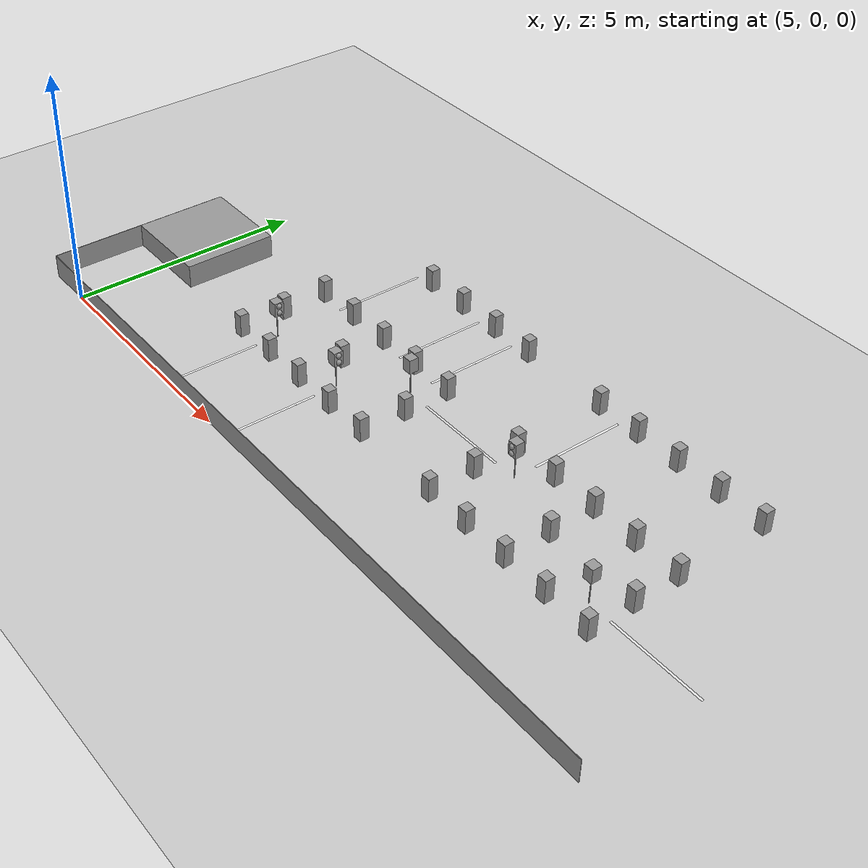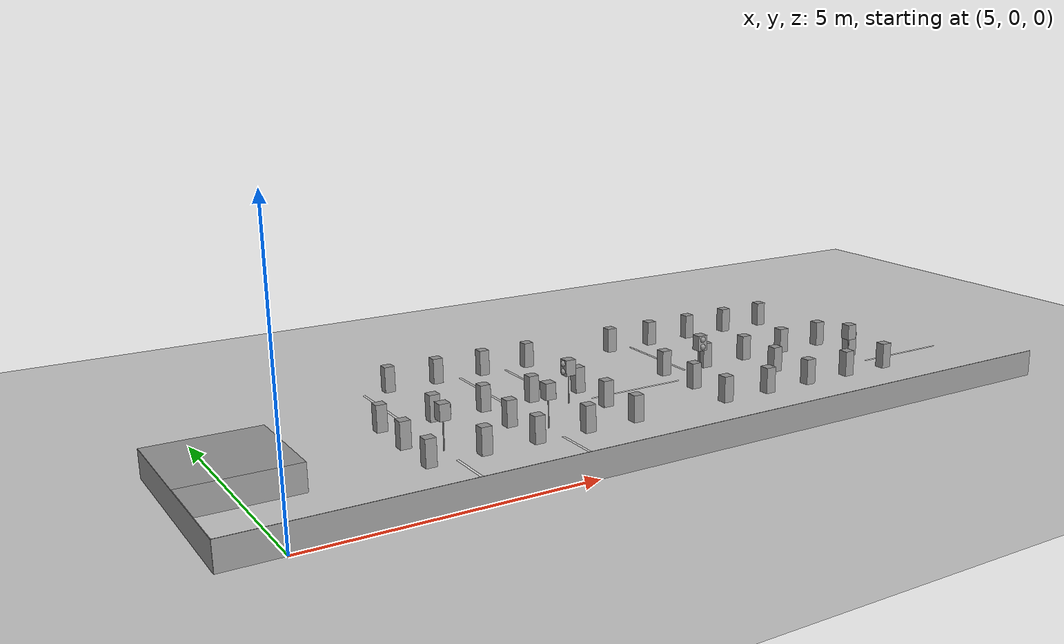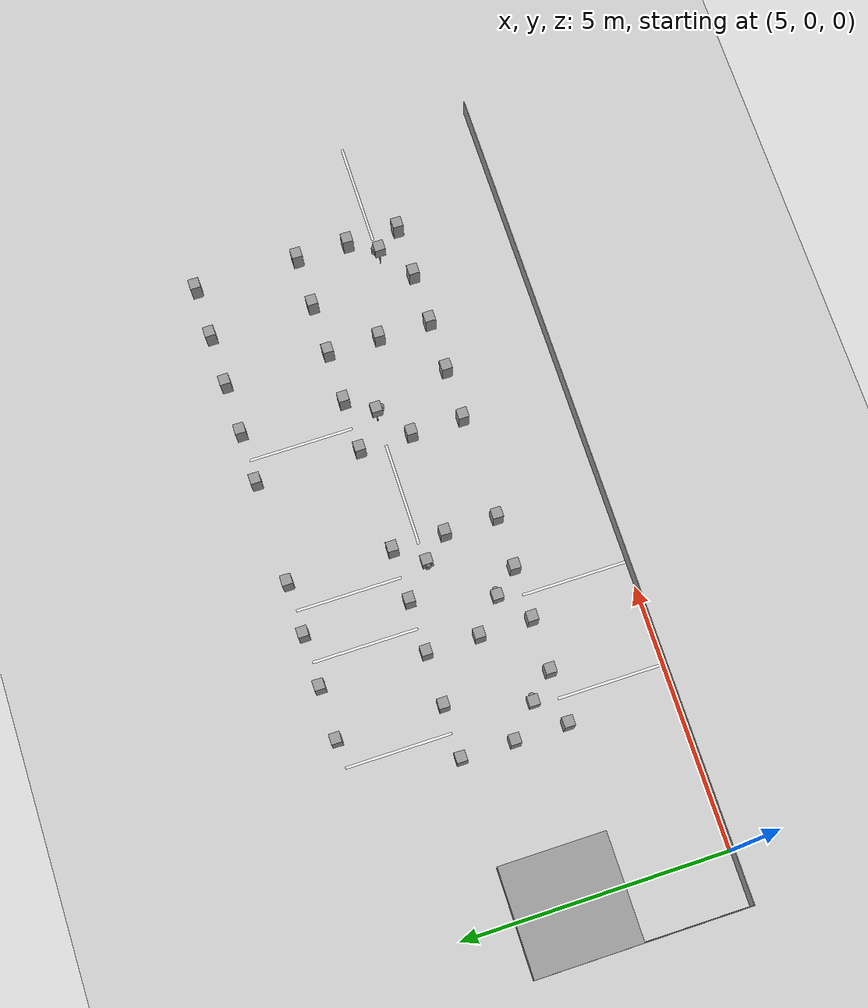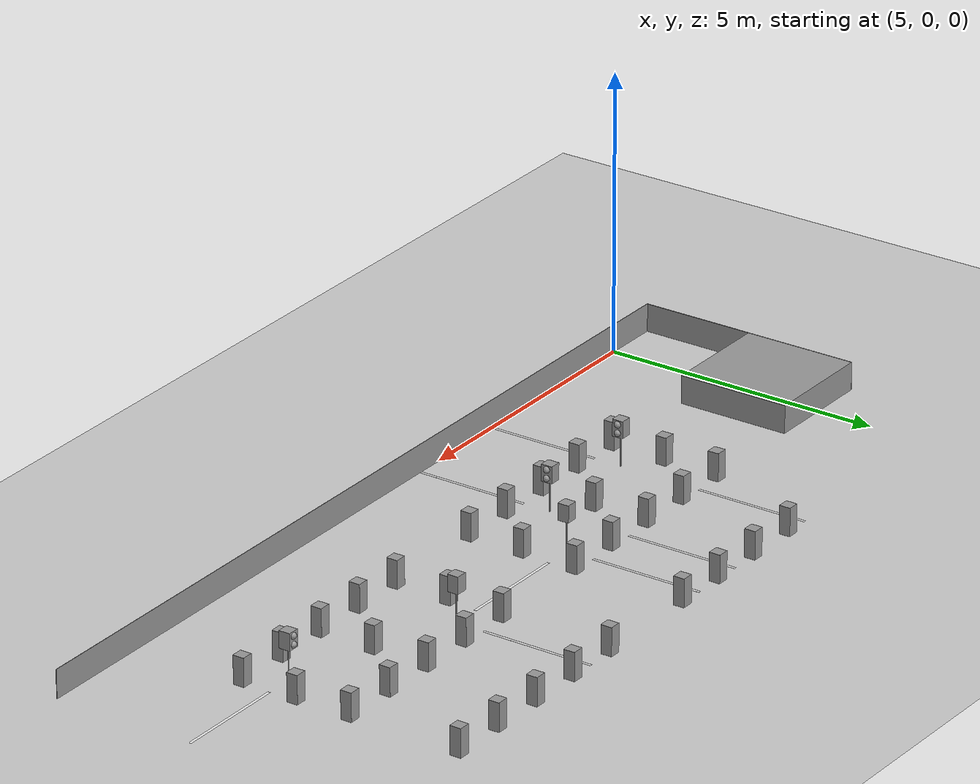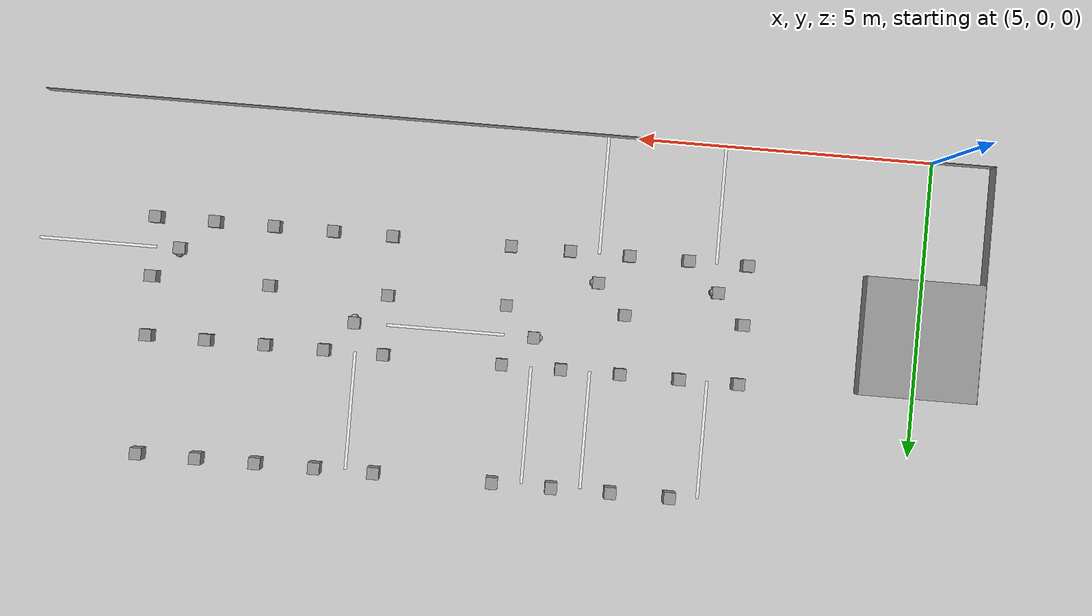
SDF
<sdf version="1.6">
 <world name="default">
  <model name="box_98">
   <pose>5.0 3.0 0.25 0 0 0</pose>
   <link name="link">
    <inertial>
     <mass>1</mass>
     <inertia><ixx>0</ixx><ixy>0</ixy><ixz>0</ixz><iyy>0</iyy><iyz>0</iyz><izz>0</izz></inertia>
    </inertial>
    <collision name="collision"><geometry><box><size>2.0 2.0 0.5</size></box></geometry></collision>
    <visual name="visual">
     <geometry><box><size>2.0 2.0 0.5</size></box></geometry>
     <material>
      <script><name>Gazebo/Grey</name><uri>file://media/materials/scripts/gazebo.material</uri></script>
     </material>
    </visual>
   </link>
   <static>1</static>
  </model>
  <model name="box_96">
   <pose>16.0 2.0 0.25 0 0 0</pose>
   <link name="link">
    <inertial>
     <mass>1</mass>
     <inertia><ixx>0</ixx><ixy>0</ixy><ixz>0</ixz><iyy>0</iyy><iyz>0</iyz><izz>0</izz></inertia>
    </inertial>
    <collision name="collision"><geometry><box><size>0.2 0.2 0.5</size></box></geometry></collision>
    <visual name="visual">
     <geometry><box><size>0.2 0.2 0.5</size></box></geometry>
     <material>
      <script><name>Gazebo/Grey</name><uri>file://media/materials/scripts/gazebo.material</uri></script>
     </material>
    </visual>
   </link>
   <static>1</static>
  </model>
  <model name="box_95">
   <pose>15.0 2.0 0.25 0 0 0</pose>
   <link name="link">
    <inertial>
     <mass>1</mass>
     <inertia><ixx>0</ixx><ixy>0</ixy><ixz>0</ixz><iyy>0</iyy><iyz>0</iyz><izz>0</izz></inertia>
    </inertial>
    <collision name="collision"><geometry><box><size>0.2 0.2 0.5</size></box></geometry></collision>
    <visual name="visual">
     <geometry><box><size>0.2 0.2 0.5</size></box></geometry>
     <material>
      <script><name>Gazebo/Grey</name><uri>file://media/materials/scripts/gazebo.material</uri></script>
     </material>
    </visual>
   </link>
   <static>1</static>
  </model>
  <model name="box_94">
   <pose>14.0 2.0 0.25 0 0 0</pose>
   <link name="link">
    <inertial>
     <mass>1</mass>
     <inertia><ixx>0</ixx><ixy>0</ixy><ixz>0</ixz><iyy>0</iyy><iyz>0</iyz><izz>0</izz></inertia>
    </inertial>
    <collision name="collision"><geometry><box><size>0.2 0.2 0.5</size></box></geometry></collision>
    <visual name="visual">
     <geometry><box><size>0.2 0.2 0.5</size></box></geometry>
     <material>
      <script><name>Gazebo/Grey</name><uri>file://media/materials/scripts/gazebo.material</uri></script>
     </material>
    </visual>
   </link>
   <static>1</static>
  </model>
  <model name="box_93">
   <pose>16.0 3.0 0.25 0 0 0</pose>
   <link name="link">
    <inertial>
     <mass>1</mass>
     <inertia><ixx>0</ixx><ixy>0</ixy><ixz>0</ixz><iyy>0</iyy><iyz>0</iyz><izz>0</izz></inertia>
    </inertial>
    <collision name="collision"><geometry><box><size>0.2 0.2 0.5</size></box></geometry></collision>
    <visual name="visual">
     <geometry><box><size>0.2 0.2 0.5</size></box></geometry>
     <material>
      <script><name>Gazebo/Grey</name><uri>file://media/materials/scripts/gazebo.material</uri></script>
     </material>
    </visual>
   </link>
   <static>1</static>
  </model>
  <model name="box_92">
   <pose>14.0 3.0 0.25 0 0 0</pose>
   <link name="link">
    <inertial>
     <mass>1</mass>
     <inertia><ixx>0</ixx><ixy>0</ixy><ixz>0</ixz><iyy>0</iyy><iyz>0</iyz><izz>0</izz></inertia>
    </inertial>
    <collision name="collision"><geometry><box><size>0.2 0.2 0.5</size></box></geometry></collision>
    <visual name="visual">
     <geometry><box><size>0.2 0.2 0.5</size></box></geometry>
     <material>
      <script><name>Gazebo/Grey</name><uri>file://media/materials/scripts/gazebo.material</uri></script>
     </material>
    </visual>
   </link>
   <static>1</static>
  </model>
  <model name="box_91">
   <pose>16.0 4.0 0.25 0 0 0</pose>
   <link name="link">
    <inertial>
     <mass>1</mass>
     <inertia><ixx>0</ixx><ixy>0</ixy><ixz>0</ixz><iyy>0</iyy><iyz>0</iyz><izz>0</izz></inertia>
    </inertial>
    <collision name="collision"><geometry><box><size>0.2 0.2 0.5</size></box></geometry></collision>
    <visual name="visual">
     <geometry><box><size>0.2 0.2 0.5</size></box></geometry>
     <material>
      <script><name>Gazebo/Grey</name><uri>file://media/materials/scripts/gazebo.material</uri></script>
     </material>
    </visual>
   </link>
   <static>1</static>
  </model>
  <model name="box_90">
   <pose>15.0 4.0 0.25 0 0 0</pose>
   <link name="link">
    <inertial>
     <mass>1</mass>
     <inertia><ixx>0</ixx><ixy>0</ixy><ixz>0</ixz><iyy>0</iyy><iyz>0</iyz><izz>0</izz></inertia>
    </inertial>
    <collision name="collision"><geometry><box><size>0.2 0.2 0.5</size></box></geometry></collision>
    <visual name="visual">
     <geometry><box><size>0.2 0.2 0.5</size></box></geometry>
     <material>
      <script><name>Gazebo/Grey</name><uri>file://media/materials/scripts/gazebo.material</uri></script>
     </material>
    </visual>
   </link>
   <static>1</static>
  </model>
  <model name="box_89">
   <pose>14.0 4.0 0.25 0 0 0</pose>
   <link name="link">
    <inertial>
     <mass>1</mass>
     <inertia><ixx>0</ixx><ixy>0</ixy><ixz>0</ixz><iyy>0</iyy><iyz>0</iyz><izz>0</izz></inertia>
    </inertial>
    <collision name="collision"><geometry><box><size>0.2 0.2 0.5</size></box></geometry></collision>
    <visual name="visual">
     <geometry><box><size>0.2 0.2 0.5</size></box></geometry>
     <material>
      <script><name>Gazebo/Grey</name><uri>file://media/materials/scripts/gazebo.material</uri></script>
     </material>
    </visual>
   </link>
   <static>1</static>
  </model>
  <model name="box_88">
   <pose>12.0 2.0 0.25 0 0 0</pose>
   <link name="link">
    <inertial>
     <mass>1</mass>
     <inertia><ixx>0</ixx><ixy>0</ixy><ixz>0</ixz><iyy>0</iyy><iyz>0</iyz><izz>0</izz></inertia>
    </inertial>
    <collision name="collision"><geometry><box><size>0.2 0.2 0.5</size></box></geometry></collision>
    <visual name="visual">
     <geometry><box><size>0.2 0.2 0.5</size></box></geometry>
     <material>
      <script><name>Gazebo/Grey</name><uri>file://media/materials/scripts/gazebo.material</uri></script>
     </material>
    </visual>
   </link>
   <static>1</static>
  </model>
  <model name="box_87">
   <pose>11.0 2.0 0.25 0 0 0</pose>
   <link name="link">
    <inertial>
     <mass>1</mass>
     <inertia><ixx>0</ixx><ixy>0</ixy><ixz>0</ixz><iyy>0</iyy><iyz>0</iyz><izz>0</izz></inertia>
    </inertial>
    <collision name="collision"><geometry><box><size>0.2 0.2 0.5</size></box></geometry></collision>
    <visual name="visual">
     <geometry><box><size>0.2 0.2 0.5</size></box></geometry>
     <material>
      <script><name>Gazebo/Grey</name><uri>file://media/materials/scripts/gazebo.material</uri></script>
     </material>
    </visual>
   </link>
   <static>1</static>
  </model>
  <model name="box_86">
   <pose>10.0 2.0 0.25 0 0 0</pose>
   <link name="link">
    <inertial>
     <mass>1</mass>
     <inertia><ixx>0</ixx><ixy>0</ixy><ixz>0</ixz><iyy>0</iyy><iyz>0</iyz><izz>0</izz></inertia>
    </inertial>
    <collision name="collision"><geometry><box><size>0.2 0.2 0.5</size></box></geometry></collision>
    <visual name="visual">
     <geometry><box><size>0.2 0.2 0.5</size></box></geometry>
     <material>
      <script><name>Gazebo/Grey</name><uri>file://media/materials/scripts/gazebo.material</uri></script>
     </material>
    </visual>
   </link>
   <static>1</static>
  </model>
  <model name="box_85">
   <pose>12.0 3.0 0.25 0 0 0</pose>
   <link name="link">
    <inertial>
     <mass>1</mass>
     <inertia><ixx>0</ixx><ixy>0</ixy><ixz>0</ixz><iyy>0</iyy><iyz>0</iyz><izz>0</izz></inertia>
    </inertial>
    <collision name="collision"><geometry><box><size>0.2 0.2 0.5</size></box></geometry></collision>
    <visual name="visual">
     <geometry><box><size>0.2 0.2 0.5</size></box></geometry>
     <material>
      <script><name>Gazebo/Grey</name><uri>file://media/materials/scripts/gazebo.material</uri></script>
     </material>
    </visual>
   </link>
   <static>1</static>
  </model>
  <model name="box_84">
   <pose>10.0 3.0 0.25 0 0 0</pose>
   <link name="link">
    <inertial>
     <mass>1</mass>
     <inertia><ixx>0</ixx><ixy>0</ixy><ixz>0</ixz><iyy>0</iyy><iyz>0</iyz><izz>0</izz></inertia>
    </inertial>
    <collision name="collision"><geometry><box><size>0.2 0.2 0.5</size></box></geometry></collision>
    <visual name="visual">
     <geometry><box><size>0.2 0.2 0.5</size></box></geometry>
     <material>
      <script><name>Gazebo/Grey</name><uri>file://media/materials/scripts/gazebo.material</uri></script>
     </material>
    </visual>
   </link>
   <static>1</static>
  </model>
  <model name="box_83">
   <pose>12.0 4.0 0.25 0 0 0</pose>
   <link name="link">
    <inertial>
     <mass>1</mass>
     <inertia><ixx>0</ixx><ixy>0</ixy><ixz>0</ixz><iyy>0</iyy><iyz>0</iyz><izz>0</izz></inertia>
    </inertial>
    <collision name="collision"><geometry><box><size>0.2 0.2 0.5</size></box></geometry></collision>
    <visual name="visual">
     <geometry><box><size>0.2 0.2 0.5</size></box></geometry>
     <material>
      <script><name>Gazebo/Grey</name><uri>file://media/materials/scripts/gazebo.material</uri></script>
     </material>
    </visual>
   </link>
   <static>1</static>
  </model>
  <model name="box_82">
   <pose>11.0 4.0 0.25 0 0 0</pose>
   <link name="link">
    <inertial>
     <mass>1</mass>
     <inertia><ixx>0</ixx><ixy>0</ixy><ixz>0</ixz><iyy>0</iyy><iyz>0</iyz><izz>0</izz></inertia>
    </inertial>
    <collision name="collision"><geometry><box><size>0.2 0.2 0.5</size></box></geometry></collision>
    <visual name="visual">
     <geometry><box><size>0.2 0.2 0.5</size></box></geometry>
     <material>
      <script><name>Gazebo/Grey</name><uri>file://media/materials/scripts/gazebo.material</uri></script>
     </material>
    </visual>
   </link>
   <static>1</static>
  </model>
  <model name="box_81">
   <pose>10.0 4.0 0.25 0 0 0</pose>
   <link name="link">
    <inertial>
     <mass>1</mass>
     <inertia><ixx>0</ixx><ixy>0</ixy><ixz>0</ixz><iyy>0</iyy><iyz>0</iyz><izz>0</izz></inertia>
    </inertial>
    <collision name="collision"><geometry><box><size>0.2 0.2 0.5</size></box></geometry></collision>
    <visual name="visual">
     <geometry><box><size>0.2 0.2 0.5</size></box></geometry>
     <material>
      <script><name>Gazebo/Grey</name><uri>file://media/materials/scripts/gazebo.material</uri></script>
     </material>
    </visual>
   </link>
   <static>1</static>
  </model>
  <model name="box_80">
   <pose>12.0 6.0 0.25 0 0 0</pose>
   <link name="link">
    <inertial>
     <mass>1</mass>
     <inertia><ixx>0</ixx><ixy>0</ixy><ixz>0</ixz><iyy>0</iyy><iyz>0</iyz><izz>0</izz></inertia>
    </inertial>
    <collision name="collision"><geometry><box><size>0.2 0.2 0.5</size></box></geometry></collision>
    <visual name="visual">
     <geometry><box><size>0.2 0.2 0.5</size></box></geometry>
     <material>
      <script><name>Gazebo/Grey</name><uri>file://media/materials/scripts/gazebo.material</uri></script>
     </material>
    </visual>
   </link>
   <static>1</static>
  </model>
  <model name="box_79">
   <pose>11.0 6.0 0.25 0 0 0</pose>
   <link name="link">
    <inertial>
     <mass>1</mass>
     <inertia><ixx>0</ixx><ixy>0</ixy><ixz>0</ixz><iyy>0</iyy><iyz>0</iyz><izz>0</izz></inertia>
    </inertial>
    <collision name="collision"><geometry><box><size>0.2 0.2 0.5</size></box></geometry></collision>
    <visual name="visual">
     <geometry><box><size>0.2 0.2 0.5</size></box></geometry>
     <material>
      <script><name>Gazebo/Grey</name><uri>file://media/materials/scripts/gazebo.material</uri></script>
     </material>
    </visual>
   </link>
   <static>1</static>
  </model>
  <model name="box_78">
   <pose>10.0 6.0 0.25 0 0 0</pose>
   <link name="link">
    <inertial>
     <mass>1</mass>
     <inertia><ixx>0</ixx><ixy>0</ixy><ixz>0</ixz><iyy>0</iyy><iyz>0</iyz><izz>0</izz></inertia>
    </inertial>
    <collision name="collision"><geometry><box><size>0.2 0.2 0.5</size></box></geometry></collision>
    <visual name="visual">
     <geometry><box><size>0.2 0.2 0.5</size></box></geometry>
     <material>
      <script><name>Gazebo/Grey</name><uri>file://media/materials/scripts/gazebo.material</uri></script>
     </material>
    </visual>
   </link>
   <static>1</static>
  </model>
  <model name="box_72">
   <pose>16.0 6.0 0.25 0 0 0</pose>
   <link name="link">
    <inertial>
     <mass>1</mass>
     <inertia><ixx>0</ixx><ixy>0</ixy><ixz>0</ixz><iyy>0</iyy><iyz>0</iyz><izz>0</izz></inertia>
    </inertial>
    <collision name="collision"><geometry><box><size>0.2 0.2 0.5</size></box></geometry></collision>
    <visual name="visual">
     <geometry><box><size>0.2 0.2 0.5</size></box></geometry>
     <material>
      <script><name>Gazebo/Grey</name><uri>file://media/materials/scripts/gazebo.material</uri></script>
     </material>
    </visual>
   </link>
   <static>1</static>
  </model>
  <model name="box_71">
   <pose>15.0 6.0 0.25 0 0 0</pose>
   <link name="link">
    <inertial>
     <mass>1</mass>
     <inertia><ixx>0</ixx><ixy>0</ixy><ixz>0</ixz><iyy>0</iyy><iyz>0</iyz><izz>0</izz></inertia>
    </inertial>
    <collision name="collision"><geometry><box><size>0.2 0.2 0.5</size></box></geometry></collision>
    <visual name="visual">
     <geometry><box><size>0.2 0.2 0.5</size></box></geometry>
     <material>
      <script><name>Gazebo/Grey</name><uri>file://media/materials/scripts/gazebo.material</uri></script>
     </material>
    </visual>
   </link>
   <static>1</static>
  </model>
  <model name="box_70">
   <pose>14.0 6.0 0.25 0 0 0</pose>
   <link name="link">
    <inertial>
     <mass>1</mass>
     <inertia><ixx>0</ixx><ixy>0</ixy><ixz>0</ixz><iyy>0</iyy><iyz>0</iyz><izz>0</izz></inertia>
    </inertial>
    <collision name="collision"><geometry><box><size>0.2 0.2 0.5</size></box></geometry></collision>
    <visual name="visual">
     <geometry><box><size>0.2 0.2 0.5</size></box></geometry>
     <material>
      <script><name>Gazebo/Grey</name><uri>file://media/materials/scripts/gazebo.material</uri></script>
     </material>
    </visual>
   </link>
   <static>1</static>
  </model>
  <model name="box_64">
   <pose>10.0 2.0 0.25 0 0 0</pose>
   <link name="link">
    <inertial>
     <mass>1</mass>
     <inertia><ixx>0</ixx><ixy>0</ixy><ixz>0</ixz><iyy>0</iyy><iyz>0</iyz><izz>0</izz></inertia>
    </inertial>
    <collision name="collision"><geometry><box><size>0.2 0.2 0.5</size></box></geometry></collision>
    <visual name="visual">
     <geometry><box><size>0.2 0.2 0.5</size></box></geometry>
     <material>
      <script><name>Gazebo/Grey</name><uri>file://media/materials/scripts/gazebo.material</uri></script>
     </material>
    </visual>
   </link>
   <static>1</static>
  </model>
  <model name="box_63">
   <pose>9.0 2.0 0.25 0 0 0</pose>
   <link name="link">
    <inertial>
     <mass>1</mass>
     <inertia><ixx>0</ixx><ixy>0</ixy><ixz>0</ixz><iyy>0</iyy><iyz>0</iyz><izz>0</izz></inertia>
    </inertial>
    <collision name="collision"><geometry><box><size>0.2 0.2 0.5</size></box></geometry></collision>
    <visual name="visual">
     <geometry><box><size>0.2 0.2 0.5</size></box></geometry>
     <material>
      <script><name>Gazebo/Grey</name><uri>file://media/materials/scripts/gazebo.material</uri></script>
     </material>
    </visual>
   </link>
   <static>1</static>
  </model>
  <model name="box_62">
   <pose>8.0 2.0 0.25 0 0 0</pose>
   <link name="link">
    <inertial>
     <mass>1</mass>
     <inertia><ixx>0</ixx><ixy>0</ixy><ixz>0</ixz><iyy>0</iyy><iyz>0</iyz><izz>0</izz></inertia>
    </inertial>
    <collision name="collision"><geometry><box><size>0.2 0.2 0.5</size></box></geometry></collision>
    <visual name="visual">
     <geometry><box><size>0.2 0.2 0.5</size></box></geometry>
     <material>
      <script><name>Gazebo/Grey</name><uri>file://media/materials/scripts/gazebo.material</uri></script>
     </material>
    </visual>
   </link>
   <static>1</static>
  </model>
  <model name="box_61">
   <pose>10.0 3.0 0.25 0 0 0</pose>
   <link name="link">
    <inertial>
     <mass>1</mass>
     <inertia><ixx>0</ixx><ixy>0</ixy><ixz>0</ixz><iyy>0</iyy><iyz>0</iyz><izz>0</izz></inertia>
    </inertial>
    <collision name="collision"><geometry><box><size>0.2 0.2 0.5</size></box></geometry></collision>
    <visual name="visual">
     <geometry><box><size>0.2 0.2 0.5</size></box></geometry>
     <material>
      <script><name>Gazebo/Grey</name><uri>file://media/materials/scripts/gazebo.material</uri></script>
     </material>
    </visual>
   </link>
   <static>1</static>
  </model>
  <model name="box_60">
   <pose>8.0 3.0 0.25 0 0 0</pose>
   <link name="link">
    <inertial>
     <mass>1</mass>
     <inertia><ixx>0</ixx><ixy>0</ixy><ixz>0</ixz><iyy>0</iyy><iyz>0</iyz><izz>0</izz></inertia>
    </inertial>
    <collision name="collision"><geometry><box><size>0.2 0.2 0.5</size></box></geometry></collision>
    <visual name="visual">
     <geometry><box><size>0.2 0.2 0.5</size></box></geometry>
     <material>
      <script><name>Gazebo/Grey</name><uri>file://media/materials/scripts/gazebo.material</uri></script>
     </material>
    </visual>
   </link>
   <static>1</static>
  </model>
  <model name="box_59">
   <pose>10.0 4.0 0.25 0 0 0</pose>
   <link name="link">
    <inertial>
     <mass>1</mass>
     <inertia><ixx>0</ixx><ixy>0</ixy><ixz>0</ixz><iyy>0</iyy><iyz>0</iyz><izz>0</izz></inertia>
    </inertial>
    <collision name="collision"><geometry><box><size>0.2 0.2 0.5</size></box></geometry></collision>
    <visual name="visual">
     <geometry><box><size>0.2 0.2 0.5</size></box></geometry>
     <material>
      <script><name>Gazebo/Grey</name><uri>file://media/materials/scripts/gazebo.material</uri></script>
     </material>
    </visual>
   </link>
   <static>1</static>
  </model>
  <model name="box_58">
   <pose>9.0 4.0 0.25 0 0 0</pose>
   <link name="link">
    <inertial>
     <mass>1</mass>
     <inertia><ixx>0</ixx><ixy>0</ixy><ixz>0</ixz><iyy>0</iyy><iyz>0</iyz><izz>0</izz></inertia>
    </inertial>
    <collision name="collision"><geometry><box><size>0.2 0.2 0.5</size></box></geometry></collision>
    <visual name="visual">
     <geometry><box><size>0.2 0.2 0.5</size></box></geometry>
     <material>
      <script><name>Gazebo/Grey</name><uri>file://media/materials/scripts/gazebo.material</uri></script>
     </material>
    </visual>
   </link>
   <static>1</static>
  </model>
  <model name="box_57">
   <pose>8.0 4.0 0.25 0 0 0</pose>
   <link name="link">
    <inertial>
     <mass>1</mass>
     <inertia><ixx>0</ixx><ixy>0</ixy><ixz>0</ixz><iyy>0</iyy><iyz>0</iyz><izz>0</izz></inertia>
    </inertial>
    <collision name="collision"><geometry><box><size>0.2 0.2 0.5</size></box></geometry></collision>
    <visual name="visual">
     <geometry><box><size>0.2 0.2 0.5</size></box></geometry>
     <material>
      <script><name>Gazebo/Grey</name><uri>file://media/materials/scripts/gazebo.material</uri></script>
     </material>
    </visual>
   </link>
   <static>1</static>
  </model>
  <model name="box_56">
   <pose>18.0 2.0 0.25 0 0 0</pose>
   <link name="link">
    <inertial>
     <mass>1</mass>
     <inertia><ixx>0</ixx><ixy>0</ixy><ixz>0</ixz><iyy>0</iyy><iyz>0</iyz><izz>0</izz></inertia>
    </inertial>
    <collision name="collision"><geometry><box><size>0.2 0.2 0.5</size></box></geometry></collision>
    <visual name="visual">
     <geometry><box><size>0.2 0.2 0.5</size></box></geometry>
     <material>
      <script><name>Gazebo/Grey</name><uri>file://media/materials/scripts/gazebo.material</uri></script>
     </material>
    </visual>
   </link>
   <static>1</static>
  </model>
  <model name="box_55">
   <pose>17.0 2.0 0.25 0 0 0</pose>
   <link name="link">
    <inertial>
     <mass>1</mass>
     <inertia><ixx>0</ixx><ixy>0</ixy><ixz>0</ixz><iyy>0</iyy><iyz>0</iyz><izz>0</izz></inertia>
    </inertial>
    <collision name="collision"><geometry><box><size>0.2 0.2 0.5</size></box></geometry></collision>
    <visual name="visual">
     <geometry><box><size>0.2 0.2 0.5</size></box></geometry>
     <material>
      <script><name>Gazebo/Grey</name><uri>file://media/materials/scripts/gazebo.material</uri></script>
     </material>
    </visual>
   </link>
   <static>1</static>
  </model>
  <model name="box_54">
   <pose>16.0 2.0 0.25 0 0 0</pose>
   <link name="link">
    <inertial>
     <mass>1</mass>
     <inertia><ixx>0</ixx><ixy>0</ixy><ixz>0</ixz><iyy>0</iyy><iyz>0</iyz><izz>0</izz></inertia>
    </inertial>
    <collision name="collision"><geometry><box><size>0.2 0.2 0.5</size></box></geometry></collision>
    <visual name="visual">
     <geometry><box><size>0.2 0.2 0.5</size></box></geometry>
     <material>
      <script><name>Gazebo/Grey</name><uri>file://media/materials/scripts/gazebo.material</uri></script>
     </material>
    </visual>
   </link>
   <static>1</static>
  </model>
  <model name="box_53">
   <pose>18.0 3.0 0.25 0 0 0</pose>
   <link name="link">
    <inertial>
     <mass>1</mass>
     <inertia><ixx>0</ixx><ixy>0</ixy><ixz>0</ixz><iyy>0</iyy><iyz>0</iyz><izz>0</izz></inertia>
    </inertial>
    <collision name="collision"><geometry><box><size>0.2 0.2 0.5</size></box></geometry></collision>
    <visual name="visual">
     <geometry><box><size>0.2 0.2 0.5</size></box></geometry>
     <material>
      <script><name>Gazebo/Grey</name><uri>file://media/materials/scripts/gazebo.material</uri></script>
     </material>
    </visual>
   </link>
   <static>1</static>
  </model>
  <model name="box_52">
   <pose>16.0 3.0 0.25 0 0 0</pose>
   <link name="link">
    <inertial>
     <mass>1</mass>
     <inertia><ixx>0</ixx><ixy>0</ixy><ixz>0</ixz><iyy>0</iyy><iyz>0</iyz><izz>0</izz></inertia>
    </inertial>
    <collision name="collision"><geometry><box><size>0.2 0.2 0.5</size></box></geometry></collision>
    <visual name="visual">
     <geometry><box><size>0.2 0.2 0.5</size></box></geometry>
     <material>
      <script><name>Gazebo/Grey</name><uri>file://media/materials/scripts/gazebo.material</uri></script>
     </material>
    </visual>
   </link>
   <static>1</static>
  </model>
  <model name="box_51">
   <pose>18.0 4.0 0.25 0 0 0</pose>
   <link name="link">
    <inertial>
     <mass>1</mass>
     <inertia><ixx>0</ixx><ixy>0</ixy><ixz>0</ixz><iyy>0</iyy><iyz>0</iyz><izz>0</izz></inertia>
    </inertial>
    <collision name="collision"><geometry><box><size>0.2 0.2 0.5</size></box></geometry></collision>
    <visual name="visual">
     <geometry><box><size>0.2 0.2 0.5</size></box></geometry>
     <material>
      <script><name>Gazebo/Grey</name><uri>file://media/materials/scripts/gazebo.material</uri></script>
     </material>
    </visual>
   </link>
   <static>1</static>
  </model>
  <model name="box_50">
   <pose>17.0 4.0 0.25 0 0 0</pose>
   <link name="link">
    <inertial>
     <mass>1</mass>
     <inertia><ixx>0</ixx><ixy>0</ixy><ixz>0</ixz><iyy>0</iyy><iyz>0</iyz><izz>0</izz></inertia>
    </inertial>
    <collision name="collision"><geometry><box><size>0.2 0.2 0.5</size></box></geometry></collision>
    <visual name="visual">
     <geometry><box><size>0.2 0.2 0.5</size></box></geometry>
     <material>
      <script><name>Gazebo/Grey</name><uri>file://media/materials/scripts/gazebo.material</uri></script>
     </material>
    </visual>
   </link>
   <static>1</static>
  </model>
  <model name="box_49">
   <pose>16.0 4.0 0.25 0 0 0</pose>
   <link name="link">
    <inertial>
     <mass>1</mass>
     <inertia><ixx>0</ixx><ixy>0</ixy><ixz>0</ixz><iyy>0</iyy><iyz>0</iyz><izz>0</izz></inertia>
    </inertial>
    <collision name="collision"><geometry><box><size>0.2 0.2 0.5</size></box></geometry></collision>
    <visual name="visual">
     <geometry><box><size>0.2 0.2 0.5</size></box></geometry>
     <material>
      <script><name>Gazebo/Grey</name><uri>file://media/materials/scripts/gazebo.material</uri></script>
     </material>
    </visual>
   </link>
   <static>1</static>
  </model>
  <model name="box_48">
   <pose>18.0 6.0 0.25 0 0 0</pose>
   <link name="link">
    <inertial>
     <mass>1</mass>
     <inertia><ixx>0</ixx><ixy>0</ixy><ixz>0</ixz><iyy>0</iyy><iyz>0</iyz><izz>0</izz></inertia>
    </inertial>
    <collision name="collision"><geometry><box><size>0.2 0.2 0.5</size></box></geometry></collision>
    <visual name="visual">
     <geometry><box><size>0.2 0.2 0.5</size></box></geometry>
     <material>
      <script><name>Gazebo/Grey</name><uri>file://media/materials/scripts/gazebo.material</uri></script>
     </material>
    </visual>
   </link>
   <static>1</static>
  </model>
  <model name="box_47">
   <pose>17.0 6.0 0.25 0 0 0</pose>
   <link name="link">
    <inertial>
     <mass>1</mass>
     <inertia><ixx>0</ixx><ixy>0</ixy><ixz>0</ixz><iyy>0</iyy><iyz>0</iyz><izz>0</izz></inertia>
    </inertial>
    <collision name="collision"><geometry><box><size>0.2 0.2 0.5</size></box></geometry></collision>
    <visual name="visual">
     <geometry><box><size>0.2 0.2 0.5</size></box></geometry>
     <material>
      <script><name>Gazebo/Grey</name><uri>file://media/materials/scripts/gazebo.material</uri></script>
     </material>
    </visual>
   </link>
   <static>1</static>
  </model>
  <model name="box_46">
   <pose>16.0 6.0 0.25 0 0 0</pose>
   <link name="link">
    <inertial>
     <mass>1</mass>
     <inertia><ixx>0</ixx><ixy>0</ixy><ixz>0</ixz><iyy>0</iyy><iyz>0</iyz><izz>0</izz></inertia>
    </inertial>
    <collision name="collision"><geometry><box><size>0.2 0.2 0.5</size></box></geometry></collision>
    <visual name="visual">
     <geometry><box><size>0.2 0.2 0.5</size></box></geometry>
     <material>
      <script><name>Gazebo/Grey</name><uri>file://media/materials/scripts/gazebo.material</uri></script>
     </material>
    </visual>
   </link>
   <static>1</static>
  </model>
  <model name="box_40">
   <pose>10.0 6.0 0.25 0 0 0</pose>
   <link name="link">
    <inertial>
     <mass>1</mass>
     <inertia><ixx>0</ixx><ixy>0</ixy><ixz>0</ixz><iyy>0</iyy><iyz>0</iyz><izz>0</izz></inertia>
    </inertial>
    <collision name="collision"><geometry><box><size>0.2 0.2 0.5</size></box></geometry></collision>
    <visual name="visual">
     <geometry><box><size>0.2 0.2 0.5</size></box></geometry>
     <material>
      <script><name>Gazebo/Grey</name><uri>file://media/materials/scripts/gazebo.material</uri></script>
     </material>
    </visual>
   </link>
   <static>1</static>
  </model>
  <model name="box_39">
   <pose>9.0 6.0 0.25 0 0 0</pose>
   <link name="link">
    <inertial>
     <mass>1</mass>
     <inertia><ixx>0</ixx><ixy>0</ixy><ixz>0</ixz><iyy>0</iyy><iyz>0</iyz><izz>0</izz></inertia>
    </inertial>
    <collision name="collision"><geometry><box><size>0.2 0.2 0.5</size></box></geometry></collision>
    <visual name="visual">
     <geometry><box><size>0.2 0.2 0.5</size></box></geometry>
     <material>
      <script><name>Gazebo/Grey</name><uri>file://media/materials/scripts/gazebo.material</uri></script>
     </material>
    </visual>
   </link>
   <static>1</static>
  </model>
  <model name="box_7">
   <pose>12.0 0.0 0.25 0 0 -3.141592653589793</pose>
   <link name="link">
    <inertial>
     <mass>1</mass>
     <inertia><ixx>0</ixx><ixy>0</ixy><ixz>0</ixz><iyy>0</iyy><iyz>0</iyz><izz>0</izz></inertia>
    </inertial>
    <collision name="collision"><geometry><box><size>16.0 0.01 0.5</size></box></geometry></collision>
    <visual name="visual">
     <geometry><box><size>16.0 0.01 0.5</size></box></geometry>
     <material>
      <script><name>Gazebo/Grey</name><uri>file://media/materials/scripts/gazebo.material</uri></script>
     </material>
    </visual>
   </link>
   <static>1</static>
  </model>
  <model name="box_4">
   <pose>4.0 2.0 0.25 0 0 1.5707963267948966</pose>
   <link name="link">
    <inertial>
     <mass>1</mass>
     <inertia><ixx>0</ixx><ixy>0</ixy><ixz>0</ixz><iyy>0</iyy><iyz>0</iyz><izz>0</izz></inertia>
    </inertial>
    <collision name="collision"><geometry><box><size>4.0 0.01 0.5</size></box></geometry></collision>
    <visual name="visual">
     <geometry><box><size>4.0 0.01 0.5</size></box></geometry>
     <material>
      <script><name>Gazebo/Grey</name><uri>file://media/materials/scripts/gazebo.material</uri></script>
     </material>
    </visual>
   </link>
   <static>1</static>
  </model>
  <model name="tl_line_9">
   <static>1</static>
   <pose>13.0 3.5 0.001 0 0 6.283185307179586</pose>
   <link name="link">
    <collision name="collision">
     <geometry><plane><normal>0 0 1</normal><size>2.0 0.05</size></plane></geometry>
     <surface><friction><ode><mu>100</mu><mu2>50</mu2></ode></friction></surface>
    </collision>
    <visual name="visual">
     <geometry><plane><normal>0 0 1</normal><size>2.0 0.05</size></plane></geometry>
     <material>
      <script><name>Gazebo/White</name><uri>file://media/materials/scripts/gazebo.material</uri></script>
     </material>
    </visual>
   </link>
  </model>
  <include>
   <uri>model://traffic-light</uri>
   <name>traffic_light_9</name>
   <pose>14.5 3.5 0 0 0 6.283185307179586</pose>
  </include>
  <model name="tl_line_8">
   <static>1</static>
   <pose>11.5 5.0 0.001 0 0 4.71238898038469</pose>
   <link name="link">
    <collision name="collision">
     <geometry><plane><normal>0 0 1</normal><size>2.0 0.05</size></plane></geometry>
     <surface><friction><ode><mu>100</mu><mu2>50</mu2></ode></friction></surface>
    </collision>
    <visual name="visual">
     <geometry><plane><normal>0 0 1</normal><size>2.0 0.05</size></plane></geometry>
     <material>
      <script><name>Gazebo/White</name><uri>file://media/materials/scripts/gazebo.material</uri></script>
     </material>
    </visual>
   </link>
  </model>
  <include>
   <uri>model://traffic-light</uri>
   <name>traffic_light_8</name>
   <pose>11.5 3.5 0 0 0 4.71238898038469</pose>
  </include>
  <model name="tl_line_6">
   <static>1</static>
   <pose>14.5 5.0 0.001 0 0 1.5707963267948966</pose>
   <link name="link">
    <collision name="collision">
     <geometry><plane><normal>0 0 1</normal><size>2.0 0.05</size></plane></geometry>
     <surface><friction><ode><mu>100</mu><mu2>50</mu2></ode></friction></surface>
    </collision>
    <visual name="visual">
     <geometry><plane><normal>0 0 1</normal><size>2.0 0.05</size></plane></geometry>
     <material>
      <script><name>Gazebo/White</name><uri>file://media/materials/scripts/gazebo.material</uri></script>
     </material>
    </visual>
   </link>
  </model>
  <model name="tl_line_5">
   <static>1</static>
   <pose>10.5 5.0 0.001 0 0 1.5707963267948966</pose>
   <link name="link">
    <collision name="collision">
     <geometry><plane><normal>0 0 1</normal><size>2.0 0.05</size></plane></geometry>
     <surface><friction><ode><mu>100</mu><mu2>50</mu2></ode></friction></surface>
    </collision>
    <visual name="visual">
     <geometry><plane><normal>0 0 1</normal><size>2.0 0.05</size></plane></geometry>
     <material>
      <script><name>Gazebo/White</name><uri>file://media/materials/scripts/gazebo.material</uri></script>
     </material>
    </visual>
   </link>
  </model>
  <model name="tl_line_4">
   <static>1</static>
   <pose>8.5 5.0 0.001 0 0 1.5707963267948966</pose>
   <link name="link">
    <collision name="collision">
     <geometry><plane><normal>0 0 1</normal><size>2.0 0.05</size></plane></geometry>
     <surface><friction><ode><mu>100</mu><mu2>50</mu2></ode></friction></surface>
    </collision>
    <visual name="visual">
     <geometry><plane><normal>0 0 1</normal><size>2.0 0.05</size></plane></geometry>
     <material>
      <script><name>Gazebo/White</name><uri>file://media/materials/scripts/gazebo.material</uri></script>
     </material>
    </visual>
   </link>
  </model>
  <model name="tl_line_3">
   <static>1</static>
   <pose>8.5 1.0 0.001 0 0 1.5707963267948966</pose>
   <link name="link">
    <collision name="collision">
     <geometry><plane><normal>0 0 1</normal><size>2.0 0.05</size></plane></geometry>
     <surface><friction><ode><mu>100</mu><mu2>50</mu2></ode></friction></surface>
    </collision>
    <visual name="visual">
     <geometry><plane><normal>0 0 1</normal><size>2.0 0.05</size></plane></geometry>
     <material>
      <script><name>Gazebo/White</name><uri>file://media/materials/scripts/gazebo.material</uri></script>
     </material>
    </visual>
   </link>
  </model>
  <include>
   <uri>model://traffic-light</uri>
   <name>traffic_light_3</name>
   <pose>8.5 2.5 0 0 0 1.5707963267948966</pose>
  </include>
  <model name="tl_line_2">
   <static>1</static>
   <pose>10.5 1.0 0.001 0 0 1.5707963267948966</pose>
   <link name="link">
    <collision name="collision">
     <geometry><plane><normal>0 0 1</normal><size>2.0 0.05</size></plane></geometry>
     <surface><friction><ode><mu>100</mu><mu2>50</mu2></ode></friction></surface>
    </collision>
    <visual name="visual">
     <geometry><plane><normal>0 0 1</normal><size>2.0 0.05</size></plane></geometry>
     <material>
      <script><name>Gazebo/White</name><uri>file://media/materials/scripts/gazebo.material</uri></script>
     </material>
    </visual>
   </link>
  </model>
  <include>
   <uri>model://traffic-light</uri>
   <name>traffic_light_2</name>
   <pose>10.5 2.5 0 0 0 1.5707963267948966</pose>
  </include>
  <model name="tl_line_1">
   <static>1</static>
   <pose>19.0 2.5 0.001 0 0 3.141592653589793</pose>
   <link name="link">
    <collision name="collision">
     <geometry><plane><normal>0 0 1</normal><size>2.0 0.05</size></plane></geometry>
     <surface><friction><ode><mu>100</mu><mu2>50</mu2></ode></friction></surface>
    </collision>
    <visual name="visual">
     <geometry><plane><normal>0 0 1</normal><size>2.0 0.05</size></plane></geometry>
     <material>
      <script><name>Gazebo/White</name><uri>file://media/materials/scripts/gazebo.material</uri></script>
     </material>
    </visual>
   </link>
  </model>
  <include>
   <uri>model://traffic-light</uri>
   <name>traffic_light_1</name>
   <pose>17.5 2.5 0 0 0 3.141592653589793</pose>
  </include>
  <model name="ground_plane">
   <static>1</static>
   <link name="link">
    <collision name="collision">
     <geometry><plane><normal>0 0 1</normal><size>100 100</size></plane></geometry>
     <surface>
      <contact><collide_bitmask>65535</collide_bitmask></contact>
      <friction><ode><mu>100</mu><mu2>50</mu2></ode></friction>
     </surface>
    </collision>
    <visual name="visual">
     <cast_shadows>0</cast_shadows>
     <geometry><plane><normal>0 0 1</normal><size>100 100</size></plane></geometry>
     <material>
      <script><uri>file://media/materials/scripts/gazebo.material</uri><name>Gazebo/Grey</name></script>
     </material>
    </visual>
   </link>
  </model>
 </world>
</sdf>
